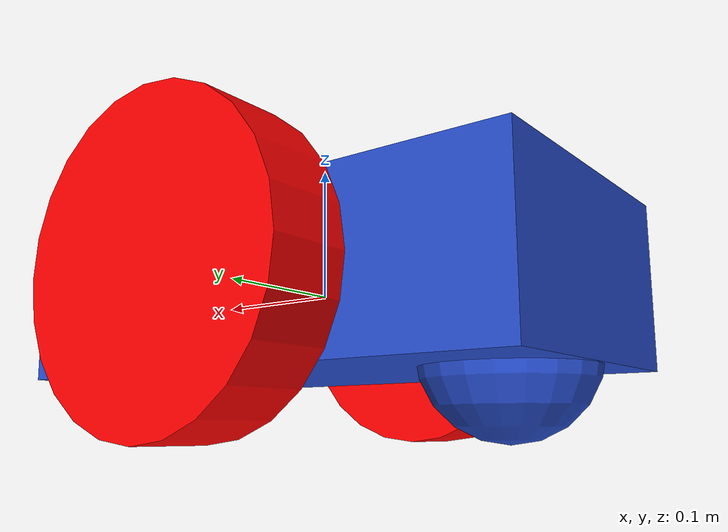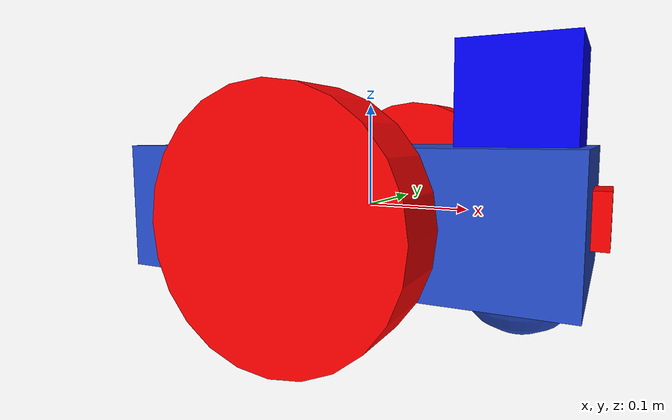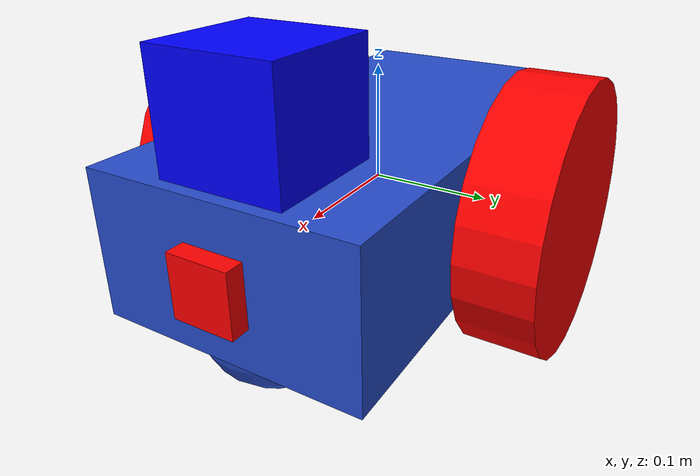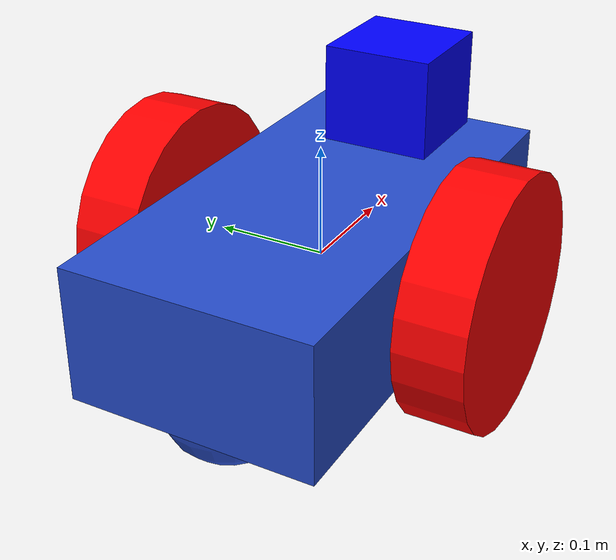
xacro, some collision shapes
<robot name="my_robot" xmlns:xacro="http://www.ros.org/wiki/xacro">
  <xacro:include filename="$(find my_robot)/urdf/my_robot.gazebo"/>
  <link name="robot_footprint"></link>

  <joint name="robot_footprint_joint" type="fixed">
    <origin xyz="0 0 0" rpy="0 0 0" />
    <parent link="robot_footprint"/>
    <child link="chassis" />
  </joint>

  <joint type="continuous" name="left_wheel_hinge">
    <origin xyz="0 0.15 0" rpy="0 0 0"/>
    <child link="left_wheel"/>
    <parent link="chassis"/>
    <axis xyz="0 1 0" rpy="0 0 0"/>
    <limit effort="10000" velocity="1000"/>
    <dynamics damping="1.0" friction="1.0"/>
  </joint>

  <joint type="continuous" name="right_wheel_hinge">
    <origin xyz="0 -0.15 0" rpy="0 0 0"/>
    <child link="right_wheel"/>
    <parent link="chassis"/>
    <axis xyz="0 1 0" rpy="0 0 0"/>
    <limit effort="10000" velocity="1000"/>
    <dynamics damping="1.0" friction="1.0"/>
  </joint>

  <joint name="camera_joint" type="fixed">
    <origin xyz="0.2 0.0 0.0" rpy="0.0 0.0 0.0"/>
    <parent link="chassis"/>
    <child link="camera"/>
    <axis xyz="0 1 0"/>
    <limit lower="0.0" upper="0.0" effort="0.0" velocity="0.0"/>
  </joint>

  <joint name="hokuyo_joint" type="fixed">
    <origin xyz="0.15 0.0 0.1" rpy="0.0 0.0 0.0"/>
    <parent link="chassis"/>
    <child link="hokuyo"/>
    <axis xyz="0 1 0"/>
    <limit lower="0.0" upper="0.0" effort="0.0" velocity="0.0"/>
  </joint>

  <joint name="camera_optical_joint" type="fixed">
    <origin xyz="0 0 0" rpy="-1.5707 0 -1.5707"/>
    <parent link="camera"/>
    <child link="camera_link_optical"/>
  </joint>

  <link name='chassis'>
    <pose>0 0 0.1 0 0 0</pose>

    <inertial>
      <mass value="15.0"/>
      <origin xyz="0.0 0 0" rpy=" 0 0 0"/>
      <inertia
          ixx="0.1" ixy="0" ixz="0"
          iyy="0.1" iyz="0"
          izz="0.1"
      />
    </inertial>

    <collision name='collision'>
      <origin xyz="0 0 0" rpy=" 0 0 0"/>
      <geometry>
        <box size=".42 .22 .12"/>
      </geometry>
    </collision>

    <visual name='chassis_visual'>
      <origin xyz="0 0 0" rpy=" 0 0 0"/>
      <geometry>
        <box size=".42 .22 .12"/>
      </geometry>
    </visual>

    <collision name='back_caster_collision'>
      <origin xyz="-0.15 0 -0.05" rpy=" 0 0 0"/>
      <geometry>
        <sphere radius="0.0599"/>
      </geometry>
    </collision>

    <visual name='back_caster_visual'>
      <origin xyz="-0.15 0 -0.05" rpy=" 0 0 0"/>
      <geometry>
        <sphere radius="0.0599"/>
      </geometry>
    </visual>

    <collision name='front_caster_collision'>
      <origin xyz="0.15 0 -0.05" rpy=" 0 0 0"/>
      <geometry>
        <sphere radius="0.0599"/>
      </geometry>
    </collision>

    <visual name='front_caster_visual'>
      <origin xyz="0.15 0 -0.05" rpy=" 0 0 0"/>
      <geometry>
        <sphere radius="0.0599"/>
      </geometry>
    </visual>

  </link>

  <link name="left_wheel">
    <inertial>
      <origin xyz="0.0 0.0 0.0" rpy="0.0 1.5707 1.5707"/>
      <mass value="5.0"/>
      <inertia ixx="0.1" ixy="0.0" ixz="0.0" iyy="0.1" iyz="0.0" izz="0.1"/>
    </inertial>
    <visual name="">
      <origin xyz="0.0 0.0 0.0" rpy="0.0 1.5707 1.5707"/>
      <geometry>
        <cylinder radius="0.11" length="0.06"/>
      </geometry>
      <material name="">
        <color rgba="1.0 0.0 0.0 1.0"/>
        <texture filename=""/>
      </material>
    </visual>
    <collision>
      <origin xyz="0.0 0.0 0.0" rpy="0.0 1.5707 1.5707"/>
      <geometry>
        <cylinder radius="0.11" length="0.06"/>
      </geometry>
    </collision>
  </link>

  <link name="right_wheel">
    <inertial>
      <origin xyz="0.0 0.0 0.0" rpy="0.0 1.5707 1.5707"/>
      <mass value="5.0"/>
      <inertia ixx="0.1" ixy="0.0" ixz="0.0" iyy="0.1" iyz="0.0" izz="0.1"/>
    </inertial>
    <visual name="">
      <origin xyz="0.0 0.0 0.0" rpy="0.0 1.5707 1.5707"/>
      <geometry>
        <cylinder radius="0.11" length="0.06"/>
      </geometry>
      <material name="">
        <color rgba="1.0 0.0 0.0 1.0"/>
        <texture filename=""/>
      </material>
    </visual>
    <collision>
      <origin xyz="0.0 0.0 0.0" rpy="0.0 1.5707 1.5707"/>
      <geometry>
        <cylinder radius="0.11" length="0.06"/>
      </geometry>
    </collision>
  </link>

  <link name="camera">
    <inertial>
      <origin xyz="0.0 0.0 0.0" rpy="0.0 0.0 0.0"/>
      <mass value="0.1"/>
      <inertia ixx="1e-6" ixy="0.0" ixz="0.0" iyy="1e-6" iyz="0.0" izz="1e-6"/>
    </inertial>
    <visual name="">
      <origin xyz="0.0 0.0 0.0" rpy="0.0 0.0 0.0"/>
      <geometry>
        <box size="0.05 0.05 0.05"/>
      </geometry>
      <material name="">
        <color rgba="1.0 0.0 0.0 1.0"/>
        <texture filename=""/>
      </material>
    </visual>
    <collision>
      <origin xyz="0.0 0.0 0.0" rpy="0.0 0.0 0.0"/>
      <geometry>
        <box size="0.05 0.05 0.05"/>
      </geometry>
    </collision>
  </link>

  <link name="hokuyo">
    <inertial>
      <origin xyz="0.0 0.0 0.0" rpy="0.0 0.0 0.0"/>
      <mass value="1e-5"/>
      <inertia ixx="1e-6" ixy="0.0" ixz="0.0" iyy="1e-6" iyz="0.0" izz="1e-6"/>
    </inertial>
    <collision>
      <origin xyz="0.0 0.0 0.0" rpy="0.0 0.0 0.0"/>
      <geometry>
        <box size="0.1 0.1 0.1"/>
      </geometry>
    </collision>
    <visual name="">
      <origin xyz="0.0 0.0 0.0" rpy="0.0 0.0 0.0"/>
      <geometry>
        <mesh filename="package://my_robot/meshes/hokuyo.dae"/>
      </geometry>
      <material name="">
        <color rgba="0.0 0.0 1.0 0.0"/>
        <texture filename=""/>
      </material>
    </visual>
  </link>

  <link name="camera_link_optical">
  </link>

  <gazebo reference="left_wheel">
      <material>Gazebo/Green</material>
  </gazebo>

  <gazebo reference="right_wheel">
      <material>Gazebo/Green</material>
  </gazebo>

  <gazebo reference="chassis">
      <material>Gazebo/Blue</material>
  </gazebo>

  <gazebo reference="camera">
      <material>Gazebo/Yellow</material>
  </gazebo>

</robot>
